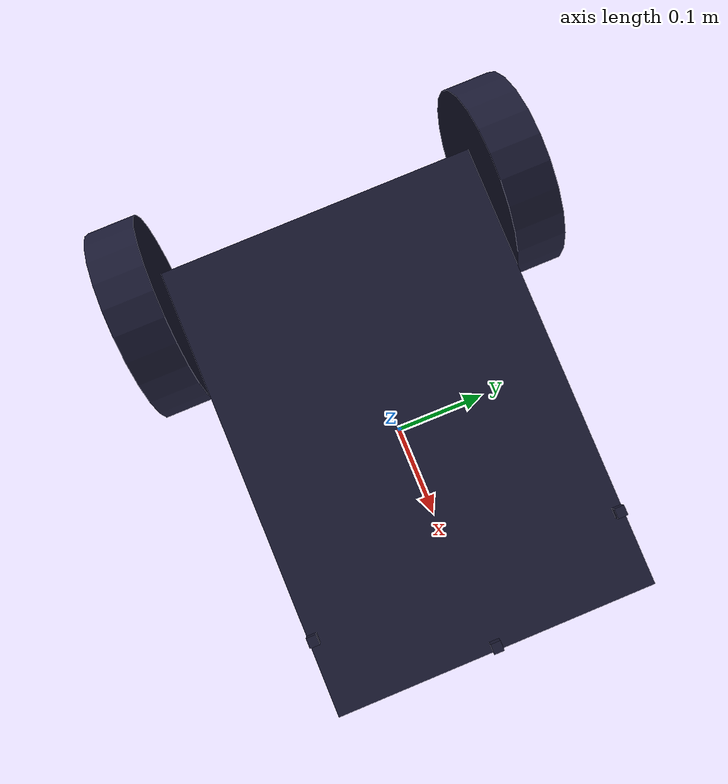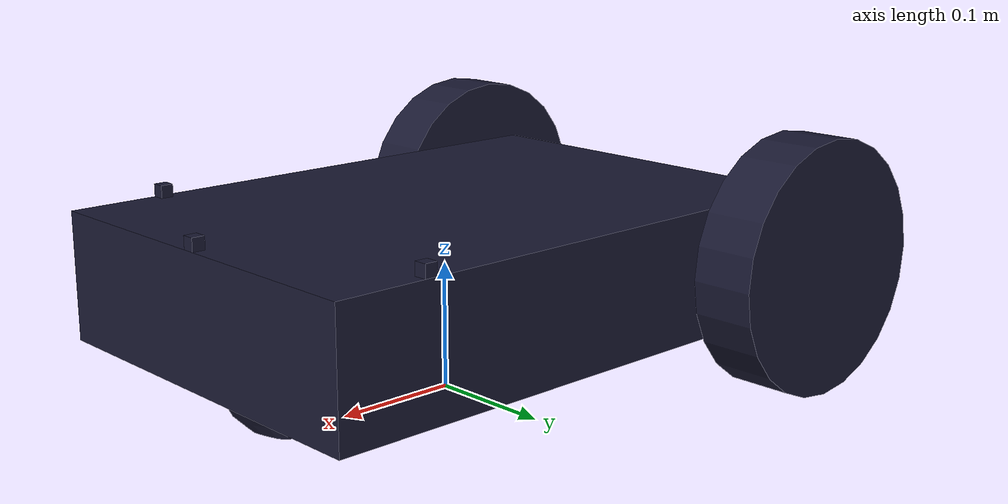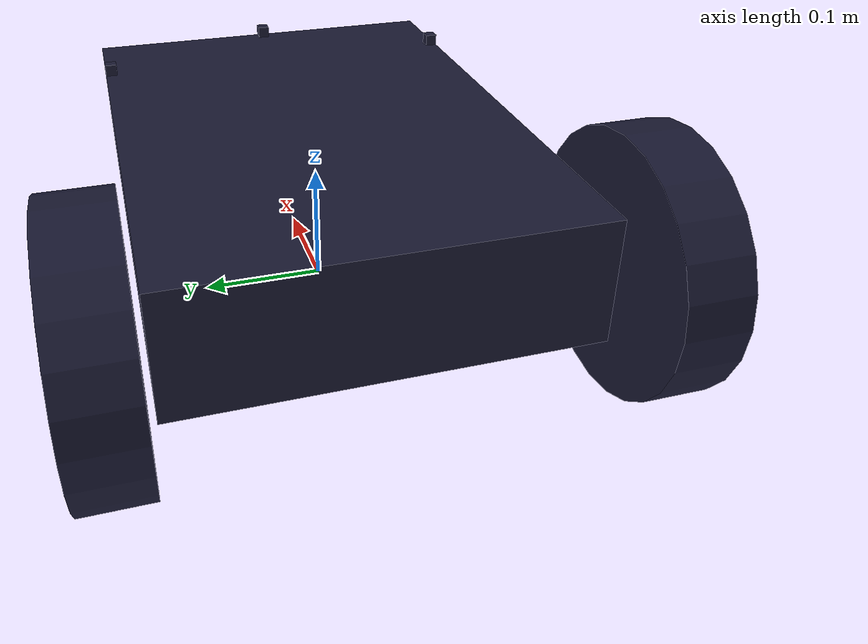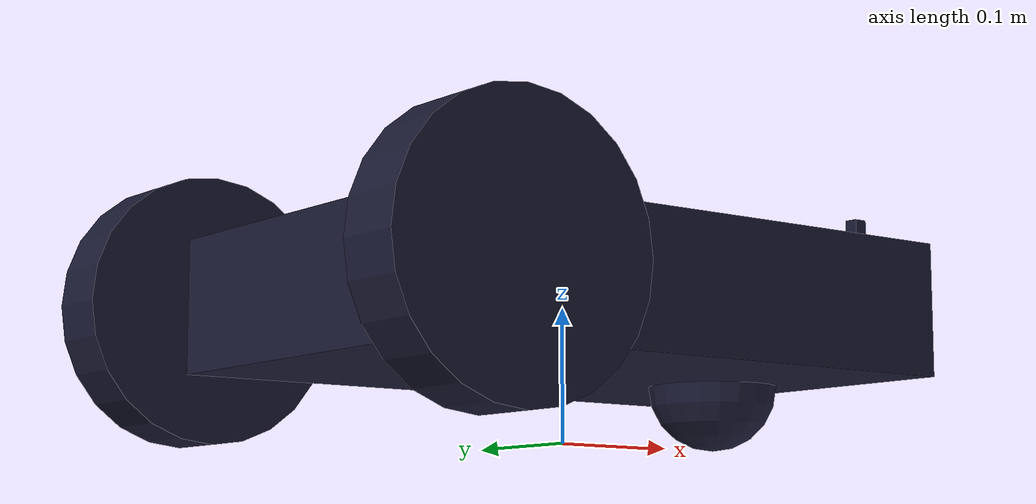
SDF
<?xml version='1.0'?>
<sdf version='1.4'>

	<model name="iitm_bot">
		<static>false</static>

		<link name='chassis'>
			<pose>0 0 0.1 0 0 0</pose>
			<inertial>
				<mass>10.0</mass>
				<inertia>
					<ixx>1.0</ixx>
					<ixy>0.0</ixy>
					<ixz>0.0</ixz>
					<iyy>1.0</iyy>
					<iyz>0.0</iyz>
					<izz>1.0</izz>
				</inertia>
			</inertial>

			<collision name='chassis_collision'>
				<geometry>
					<box>
						<size>0.45 0.32 0.1</size>
					</box>
				</geometry>
			</collision>

			<visual name='chassis_visual'>
				<geometry>
					<box>
						<size>0.45 0.32 0.1</size>
					</box>
				</geometry>

				<material>
					<ambient>0.1 0.1 0.9 1</ambient>
					<diffuse>0.1 0.1 0.2 1</diffuse>
					<specular>0 0 0 0</specular>
					<emissive>0 0 0 1</emissive>
				</material>
			</visual>

			<collision name='caster_collision'>
				<pose>0.15 0 -0.05 0 0 0</pose>
				<geometry>
					<sphere>
						<radius>.05</radius>
					</sphere>
				</geometry>
				<surface>
					<friction>
						<ode>
							<mu>0</mu>
							<mu2>0</mu2>
							<slip1>1.0</slip1>
							<slip2>1.0</slip2>
						</ode>
					</friction>
				</surface>
			</collision>

			<visual name='caster_visual'>
				<pose>0.15 0 -0.05 0 0 0</pose>
				<geometry>
					<sphere>
						<radius>.05</radius>
					</sphere>
				</geometry>

				<material>
					<ambient>0 0 0 1</ambient>
					<diffuse>0.1 0.1 0.2 1</diffuse>
					<specular>0 0 0 0</specular>
					<emissive>0 0 0 1</emissive>
				</material>
			</visual>
		</link>

		<link name="left_wheel">
			<pose>-0.2 0.19 0.1 0 1.5707 1.5707</pose>

			<inertial>
				<mass>1.0</mass>
				<inertia>
					<ixx>0.67</ixx>
					<ixy>0.0</ixy>
					<ixz>0.0</ixz>
					<iyy>0.67</iyy>
					<iyz>0.0</iyz>
					<izz>0.67</izz>
				</inertia>
			</inertial>

			<collision name="left_wheel_collision">
				<geometry>
					<cylinder>
						<radius>.1</radius>
						<length>.05</length>
					</cylinder>
				</geometry>
			</collision>

			<visual name="left_wheel_visual">
				<geometry>
					<cylinder>
						<radius>.1</radius>
						<length>.05</length>
					</cylinder>
				</geometry>

				<material>
					<ambient>0.1 0.1 0.1 1</ambient>
					<diffuse>0.1 0.1 0.2 1</diffuse>
					<specular>0 0 0 0</specular>
					<emissive>0 0 0 1</emissive>
				</material>
			</visual>
		</link>

		<link name="right_wheel">
			<pose>-0.2 -0.19 0.1 0 1.5707 1.5707</pose>

			<inertial>
				<mass>1.0</mass>
				<inertia>
					<ixx>0.67</ixx>
					<ixy>0.0</ixy>
					<ixz>0.0</ixz>
					<iyy>0.67</iyy>
					<iyz>0.0</iyz>
					<izz>0.67</izz>
				</inertia>
			</inertial>

			<collision name="right_wheel_collision">
				<geometry>
					<cylinder>
						<radius>.1</radius>
						<length>.05</length>
					</cylinder>
				</geometry>
			</collision>

			<visual name="right_wheel_visual">
				<geometry>
					<cylinder>
						<radius>.1</radius>
						<length>.05</length>
					</cylinder>
				</geometry>

				<material>
					<ambient>0.1 0.1 0.1 1</ambient>
					<diffuse>0.1 0.1 0.2 1</diffuse>
					<specular>0 0 0 0</specular>
					<emissive>0 0 0 1</emissive>
				</material>
			</visual>
		</link>

		<joint type="revolute" name="left_wheel_joint">
			<pose>0 0 0.03 0 0 0</pose>
			<child>left_wheel</child>
			<parent>chassis</parent>
			<axis>
				<xyz>0 1 0</xyz>
			</axis>
		</joint>

		<joint type="revolute" name="right_wheel_joint">
			<pose>0 0 -0.03 0 0 0</pose>
			<child>right_wheel</child>
			<parent>chassis</parent>

			<axis>
				<xyz>0 1 0</xyz>
			</axis>
		</joint>

		<link name="front_ray_sensor">
			<pose>0.22 0 0.155 0 0 0</pose>

			<collision name="front_sensor_collision">
				<geometry>
					<box>
						<size>0.01 0.01 0.01</size>
					</box>
				</geometry>
			</collision>

			<visual name="front_sensor_visual">
				<geometry>
					<box>
						<size>0.01 0.01 0.01</size>
					</box>
				</geometry>

				<material>
					<ambient>0.9 0.9 0.9 1</ambient>
					<diffuse>0.1 0.1 0.2 1</diffuse>
					<specular>0 0 0 0</specular>
					<emissive>0 0 0 1</emissive>
				</material>
			</visual>

			<sensor name="front_ray_sensor" type="ray">
				<pose>0 0 0 0 0 0</pose>
				<always_on>true</always_on>
				<visualize>true</visualize>
				<update_rate>30</update_rate>

				<ray>
					<scan>
						<horizontal>
							<samples>1</samples>
							<resolution>1</resolution>
							<min_angle>-0.01</min_angle>
							<max_angle>0.01</max_angle>
						</horizontal>
					</scan>

					<range>
						<min>0.01</min>
						<max>10.0</max>
						<resolution>0.01</resolution>
					</range>

					<noise>
						<type>gaussian</type>
						<mean>0.0</mean>
						<stddev>0.05</stddev>
					</noise>
				</ray>

				<plugin name="iitm_bot_front_sensor" filename="libgazebo_ros_laser.so">
					<topicName>/iitm_bot/ray/front_sensor</topicName>
					<frameName>front_sensor</frameName>
				</plugin>
			</sensor>
		</link>

		<joint name="front_ray_sensor_joint" type="fixed">
			<pose>0 0 0 0 0 0</pose>
			<parent>chassis</parent>
			<child>front_ray_sensor</child>
		</joint>

		<link name="left_ray_sensor">
			<pose>0.15 0.155 0.155 0 0 0</pose>

			<collision name="left_sensor_collision">
				<geometry>
					<box>
						<size>0.01 0.01 0.01</size>
					</box>
				</geometry>
			</collision>

			<visual name="left_sensor_visual">
				<geometry>
					<box>
						<size>0.01 0.01 0.01</size>
					</box>
				</geometry>

				<material>
					<ambient>0.9 0.9 0.9 1</ambient>
					<diffuse>0.1 0.1 0.2 1</diffuse>
					<specular>0 0 0 0</specular>
					<emissive>0 0 0 1</emissive>
				</material>
			</visual>

			<sensor name="left_ray_sensor" type="ray">
				<pose>0 0 0 0 0 1.5717</pose>
				<always_on>true</always_on>
				<visualize>true</visualize>
				<update_rate>30</update_rate>

				<ray>
					<scan>
						<horizontal>
							<samples>1</samples>
							<resolution>1</resolution>
							<min_angle>-0.01</min_angle>
							<max_angle>0.01</max_angle>
						</horizontal>
					</scan>

					<range>
						<min>0.01</min>
						<max>10.0</max>
						<resolution>0.01</resolution>
					</range>

					<noise>
						<type>gaussian</type>
						<mean>0.0</mean>
						<stddev>0.05</stddev>
					</noise>
				</ray>

				<plugin name="iitm_bot_left_sensor" filename="libgazebo_ros_laser.so">
					<topicName>/iitm_bot/ray/left_sensor</topicName>
					<frameName>left_sensor</frameName>
				</plugin>
			</sensor>
		</link>

		<joint name="left_ray_sensor_joint" type="fixed">
			<pose>0 0 0 0 0 0</pose>
			<parent>chassis</parent>
			<child>left_ray_sensor</child>
		</joint>

		<link name="right_ray_sensor">
			<pose>0.15 -0.155 0.155 0 0 0</pose>

			<collision name="right_sensor_collision">
				<geometry>
					<box>
						<size>0.01 0.01 0.01</size>
					</box>
				</geometry>
			</collision>

			<visual name="right_sensor_visual">
				<geometry>
					<box>
						<size>0.01 0.01 0.01</size>
					</box>
				</geometry>

				<material>
					<ambient>0.9 0.9 0.9 1</ambient>
					<diffuse>0.1 0.1 0.2 1</diffuse>
					<specular>0 0 0 0</specular>
					<emissive>0 0 0 1</emissive>
				</material>
			</visual>

			<sensor name="right_ray_sensor" type="ray">
				<pose>0 0 0 0 0 -1.5717</pose>
				<always_on>true</always_on>
				<visualize>true</visualize>
				<update_rate>30</update_rate>

				<ray>
					<scan>
						<horizontal>
							<samples>1</samples>
							<resolution>1</resolution>
							<min_angle>-0.01</min_angle>
							<max_angle>0.01</max_angle>
						</horizontal>
					</scan>

					<range>
						<min>0.01</min>
						<max>10.0</max>
						<resolution>0.01</resolution>
					</range>

					<noise>
						<type>gaussian</type>
						<mean>0.0</mean>
						<stddev>0.05</stddev>
					</noise>
				</ray>

				<plugin name="iitm_bot_right_sensor" filename="libgazebo_ros_laser.so">
					<topicName>/iitm_bot/ray/right_sensor</topicName>
					<frameName>right_sensor</frameName>
				</plugin>
			</sensor>
		</link>

		<joint name="right_ray_sensor_joint" type="fixed">
			<pose>0 0 0 0 0 0</pose>
			<parent>chassis</parent>
			<child>right_ray_sensor</child>
		</joint>

		<plugin name="differential_drive_controller" filename="libgazebo_ros_diff_drive.so">
			<alwaysOn>true</alwaysOn>
			<legacyMode>false</legacyMode>
			<updateRate>30</updateRate>
			<robotNamespace>/</robotNamespace>
			<leftJoint>left_wheel_joint</leftJoint>
			<rightJoint>right_wheel_joint</rightJoint>
			<wheelSeparation>0.36</wheelSeparation>
			<wheelDiameter>0.2</wheelDiameter>
			<wheelAcceleration>1.0</wheelAcceleration>
			<wheelTorque>20</wheelTorque>
			<torque>20</torque>
			<commandTopic>iitm_bot/cmd_vel</commandTopic>
			<odometryTopic>iitm_bot/odom</odometryTopic>
			<odometryFrame>odom</odometryFrame>
			<odometrySource>world</odometrySource>
			<rosDebugLevel>na</rosDebugLevel>
			<robotBaseFrame>base_footprint</robotBaseFrame>
			<publishWheelTF>true</publishWheelTF>
			<publishWheelJointState>true</publishWheelJointState>
			<publishTf>true</publishTf>
		</plugin>

	</model>

</sdf>
